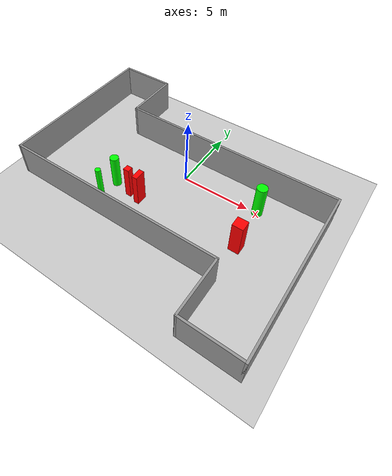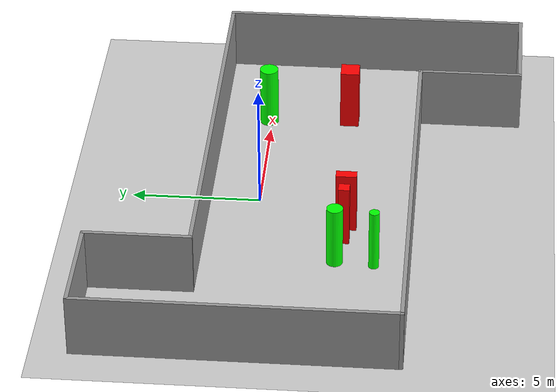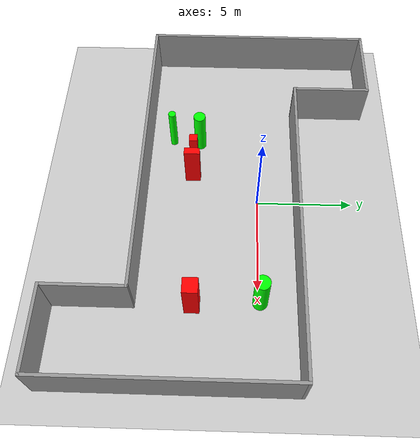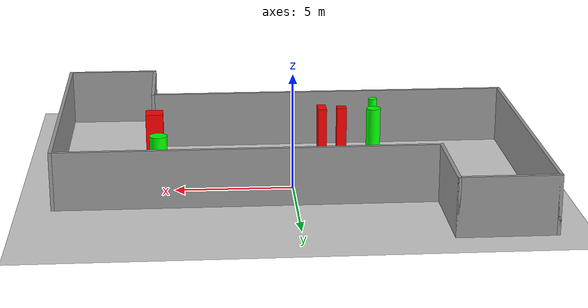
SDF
<sdf version="1.7">
 <world name="default">
  <light name="sun" type="directional">
   <pose>0 0 10 0 -0 0</pose>
   <diffuse>0.8 0.8 0.8 1</diffuse>
   <specular>0.2 0.2 0.2 1</specular>
   <attenuation>
    <range>1000</range>
    <constant>0.9</constant>
    <linear>0.01</linear>
    <quadratic>0.001</quadratic>
   </attenuation>
   <direction>-0.5 0.1 -0.9</direction>
   <spot><inner_angle>0</inner_angle><outer_angle>0</outer_angle><falloff>0</falloff></spot>
  </light>
  <model name="ground_plane">
   <static>1</static>
   <link name="link">
    <collision name="collision">
     <geometry><plane><normal>0 0 1</normal><size>100 100</size></plane></geometry>
     <surface>
      <contact><collide_bitmask>65535</collide_bitmask></contact>
      <friction><ode><mu>100</mu><mu2>50</mu2></ode></friction>
     </surface>
    </collision>
    <visual name="visual">
     <cast_shadows>0</cast_shadows>
     <geometry><plane><normal>0 0 1</normal><size>100 100</size></plane></geometry>
     <material>
      <script><uri>file://media/materials/scripts/gazebo.material</uri><name>Gazebo/Grey</name></script>
     </material>
    </visual>
   </link>
  </model>
  <gravity>0 0 -9.8</gravity>
  <magnetic_field>6e-06 2.3e-05 -4.2e-05</magnetic_field>
  <atmosphere type="adiabatic"/>
  <physics type="ode">
   <max_step_size>0.001</max_step_size>
   <real_time_factor>1</real_time_factor>
   <real_time_update_rate>1000</real_time_update_rate>
  </physics>
  <scene><ambient>0.4 0.4 0.4 1</ambient><background>0.7 0.7 0.7 1</background><shadows>1</shadows></scene>
  <spherical_coordinates>
   <surface_model>EARTH_WGS84</surface_model>
   <latitude_deg>0</latitude_deg>
   <longitude_deg>0</longitude_deg>
   <elevation>0</elevation>
   <heading_deg>0</heading_deg>
  </spherical_coordinates>
  <model name="my_base_walls">
   <link name="Wall_13">
    <collision name="Wall_13_Collision">
     <geometry><box><size>12.15 0.15 2.5</size></box></geometry>
     <pose>0 0 1.25 0 -0 0</pose>
    </collision>
    <visual name="Wall_13_Visual">
     <pose>0 0 1.25 0 -0 0</pose>
     <geometry><box><size>12.15 0.15 2.5</size></box></geometry>
     <material>
      <script><uri>file://media/materials/scripts/gazebo.material</uri><name>Gazebo/Grey</name></script>
      <ambient>1 1 1 1</ambient>
     </material>
     <meta><layer>0</layer></meta>
    </visual>
    <pose>10 -2 0 0 -0 1.5708</pose>
   </link>
   <link name="Wall_15">
    <collision name="Wall_15_Collision">
     <geometry><box><size>16.15 0.15 2.5</size></box></geometry>
     <pose>0 0 1.25 0 -0 0</pose>
    </collision>
    <visual name="Wall_15_Visual">
     <pose>0 0 1.25 0 -0 0</pose>
     <geometry><box><size>16.15 0.15 2.5</size></box></geometry>
     <material>
      <script><uri>file://media/materials/scripts/gazebo.material</uri><name>Gazebo/Grey</name></script>
      <ambient>1 1 1 1</ambient>
     </material>
     <meta><layer>0</layer></meta>
    </visual>
    <pose>2 4 0 0 -0 3.14159</pose>
   </link>
   <link name="Wall_17">
    <collision name="Wall_17_Collision">
     <geometry><box><size>4.15 0.15 2.5</size></box></geometry>
     <pose>0 0 1.25 0 -0 0</pose>
    </collision>
    <visual name="Wall_17_Visual">
     <pose>0 0 1.25 0 -0 0</pose>
     <geometry><box><size>4.15 0.15 2.5</size></box></geometry>
     <material>
      <script><uri>file://media/materials/scripts/gazebo.material</uri><name>Gazebo/Grey</name></script>
      <ambient>1 1 1 1</ambient>
     </material>
     <meta><layer>0</layer></meta>
    </visual>
    <pose>6 -6 0 0 -0 -1.5708</pose>
   </link>
   <link name="Wall_19">
    <collision name="Wall_19_Collision">
     <geometry><box><size>12.15 0.15 2.5</size></box></geometry>
     <pose>0 0 1.25 0 -0 0</pose>
    </collision>
    <visual name="Wall_19_Visual">
     <pose>0 0 1.25 0 -0 0</pose>
     <geometry><box><size>12.15 0.15 2.5</size></box></geometry>
     <material>
      <script><uri>file://media/materials/scripts/gazebo.material</uri><name>Gazebo/Grey</name></script>
      <ambient>1 1 1 1</ambient>
     </material>
     <meta><layer>0</layer></meta>
    </visual>
    <pose>-10 2 0 0 -0 1.5708</pose>
   </link>
   <link name="Wall_21">
    <collision name="Wall_21_Collision">
     <geometry><box><size>4.15 0.15 2.5</size></box></geometry>
     <pose>0 0 1.25 0 -0 0</pose>
    </collision>
    <visual name="Wall_21_Visual">
     <pose>0 0 1.25 0 -0 0</pose>
     <geometry><box><size>4.15 0.15 2.5</size></box></geometry>
     <material>
      <script><uri>file://media/materials/scripts/gazebo.material</uri><name>Gazebo/Grey</name></script>
      <ambient>1 1 1 1</ambient>
     </material>
     <meta><layer>0</layer></meta>
    </visual>
    <pose>-8 8 0 0 -0 0</pose>
   </link>
   <link name="Wall_23">
    <collision name="Wall_23_Collision">
     <geometry><box><size>4.15 0.15 2.5</size></box></geometry>
     <pose>0 0 1.25 0 -0 0</pose>
    </collision>
    <visual name="Wall_23_Visual">
     <pose>0 0 1.25 0 -0 0</pose>
     <geometry><box><size>4.15 0.15 2.5</size></box></geometry>
     <material>
      <script><uri>file://media/materials/scripts/gazebo.material</uri><name>Gazebo/Grey</name></script>
      <ambient>1 1 1 1</ambient>
     </material>
     <meta><layer>0</layer></meta>
    </visual>
    <pose>-6 6 0 0 -0 -1.5708</pose>
   </link>
   <link name="Wall_25">
    <collision name="Wall_25_Collision">
     <geometry><box><size>4.15 0.15 2.5</size></box></geometry>
     <pose>0 0 1.25 0 -0 0</pose>
    </collision>
    <visual name="Wall_25_Visual">
     <pose>0 0 1.25 0 -0 0</pose>
     <geometry><box><size>4.15 0.15 2.5</size></box></geometry>
     <material>
      <script><uri>file://media/materials/scripts/gazebo.material</uri><name>Gazebo/Grey</name></script>
      <ambient>1 1 1 1</ambient>
     </material>
     <meta><layer>0</layer></meta>
    </visual>
    <pose>8 -8 0 0 -0 0</pose>
   </link>
   <link name="Wall_9">
    <collision name="Wall_9_Collision">
     <geometry><box><size>16.15 0.15 2.5</size></box></geometry>
     <pose>0 0 1.25 0 -0 0</pose>
    </collision>
    <visual name="Wall_9_Visual">
     <pose>0 0 1.25 0 -0 0</pose>
     <geometry><box><size>16.15 0.15 2.5</size></box></geometry>
     <material>
      <script><uri>file://media/materials/scripts/gazebo.material</uri><name>Gazebo/Grey</name></script>
      <ambient>1 1 1 1</ambient>
     </material>
     <meta><layer>0</layer></meta>
    </visual>
    <pose>-2 -4 0 0 -0 3.14159</pose>
   </link>
   <static>1</static>
   <pose>-0 -2 0 0 -0 0</pose>
  </model>
  <model name="cylinder1">
   <static>1</static>
   <link name="link">
    <inertial>
     <mass>1</mass>
     <inertia><ixx>0.5</ixx><ixy>0</ixy><ixz>0</ixz><iyy>0.5</iyy><iyz>0</iyz><izz>1</izz></inertia>
    </inertial>
    <collision name="collision">
     <geometry><cylinder><radius>0.31407018934093106</radius><length>2.5</length></cylinder></geometry>
    </collision>
    <visual name="visual">
     <geometry><cylinder><radius>0.31407018934093106</radius><length>2.5</length></cylinder></geometry>
     <material>
      <ambient>0 1 0 1</ambient>
      <diffuse>0 1 0 1</diffuse>
      <specular>0.1 0.1 0.1 1</specular>
      <emissive>0 0 0 0</emissive>
     </material>
    </visual>
   </link>
   <pose>-3.8162320822012337 -3.1886268158382487 1.25 0 0 0</pose>
  </model>
  <model name="cylinder2">
   <static>1</static>
   <link name="link">
    <inertial>
     <mass>1</mass>
     <inertia><ixx>0.5</ixx><ixy>0</ixy><ixz>0</ixz><iyy>0.5</iyy><iyz>0</iyz><izz>1</izz></inertia>
    </inertial>
    <collision name="collision">
     <geometry><cylinder><radius>0.37010564022547465</radius><length>2.5</length></cylinder></geometry>
    </collision>
    <visual name="visual">
     <geometry><cylinder><radius>0.37010564022547465</radius><length>2.5</length></cylinder></geometry>
     <material>
      <ambient>0 1 0 1</ambient>
      <diffuse>0 1 0 1</diffuse>
      <specular>0.1 0.1 0.1 1</specular>
      <emissive>0 0 0 0</emissive>
     </material>
    </visual>
   </link>
   <pose>5.660032742390534 0.1195583897021617 1.25 0 0 0</pose>
  </model>
  <model name="cylinder3">
   <static>1</static>
   <link name="link">
    <inertial>
     <mass>1</mass>
     <inertia><ixx>0.5</ixx><ixy>0</ixy><ixz>0</ixz><iyy>0.5</iyy><iyz>0</iyz><izz>1</izz></inertia>
    </inertial>
    <collision name="collision">
     <geometry><cylinder><radius>0.1974773866111944</radius><length>2.5</length></cylinder></geometry>
    </collision>
    <visual name="visual">
     <geometry><cylinder><radius>0.1974773866111944</radius><length>2.5</length></cylinder></geometry>
     <material>
      <ambient>0 1 0 1</ambient>
      <diffuse>0 1 0 1</diffuse>
      <specular>0.1 0.1 0.1 1</specular>
      <emissive>0 0 0 0</emissive>
     </material>
    </visual>
   </link>
   <pose>-3.9630781337448653 -4.681998677339434 1.25 0 0 0</pose>
  </model>
  <model name="box1">
   <static>1</static>
   <link name="link">
    <inertial>
     <mass>1</mass>
     <inertia><ixx>0.083</ixx><ixy>0</ixy><ixz>0</ixz><iyy>0.083</iyy><iyz>0</iyz><izz>0.083</izz></inertia>
    </inertial>
    <collision name="collision">
     <geometry><box><size>0.38381788747363227 0.805477213422892 2.5</size></box></geometry>
    </collision>
    <visual name="visual">
     <geometry><box><size>0.38381788747363227 0.805477213422892 2.5</size></box></geometry>
     <material>
      <ambient>1 0 0 1</ambient>
      <diffuse>1 0 0 1</diffuse>
      <specular>0.1 0.1 0.1 1</specular>
      <emissive>0 0 0 0</emissive>
     </material>
    </visual>
    <sensor name="my_contact" type="contact">
     <contact><collision>box_collision</collision><topic>__default_topic__</topic></contact>
    </sensor>
   </link>
   <pose>-1.5374509953734314 -3.481743234439378 1.25 0 0 0</pose>
  </model>
  <model name="box2">
   <static>1</static>
   <link name="link">
    <inertial>
     <mass>1</mass>
     <inertia><ixx>0.083</ixx><ixy>0</ixy><ixz>0</ixz><iyy>0.083</iyy><iyz>0</iyz><izz>0.083</izz></inertia>
    </inertial>
    <collision name="collision">
     <geometry><box><size>0.42858703373489376 0.4269053092503123 2.5</size></box></geometry>
    </collision>
    <visual name="visual">
     <geometry><box><size>0.42858703373489376 0.4269053092503123 2.5</size></box></geometry>
     <material>
      <ambient>1 0 0 1</ambient>
      <diffuse>1 0 0 1</diffuse>
      <specular>0.1 0.1 0.1 1</specular>
      <emissive>0 0 0 0</emissive>
     </material>
    </visual>
    <sensor name="my_contact" type="contact">
     <contact><collision>box_collision</collision><topic>__default_topic__</topic></contact>
    </sensor>
   </link>
   <pose>-2.4111695827626587 -3.44727823139043 1.25 0 0 0</pose>
  </model>
  <model name="box3">
   <static>1</static>
   <link name="link">
    <inertial>
     <mass>1</mass>
     <inertia><ixx>0.083</ixx><ixy>0</ixy><ixz>0</ixz><iyy>0.083</iyy><iyz>0</iyz><izz>0.083</izz></inertia>
    </inertial>
    <collision name="collision">
     <geometry><box><size>0.7549170499036959 0.743883529842066 2.5</size></box></geometry>
    </collision>
    <visual name="visual">
     <geometry><box><size>0.7549170499036959 0.743883529842066 2.5</size></box></geometry>
     <material>
      <ambient>1 0 0 1</ambient>
      <diffuse>1 0 0 1</diffuse>
      <specular>0.1 0.1 0.1 1</specular>
      <emissive>0 0 0 0</emissive>
     </material>
    </visual>
    <sensor name="my_contact" type="contact">
     <contact><collision>box_collision</collision><topic>__default_topic__</topic></contact>
    </sensor>
   </link>
   <pose>5.8840827853900155 -3.1598254134567245 1.25 0 0 0</pose>
  </model>
 </world>
</sdf>
